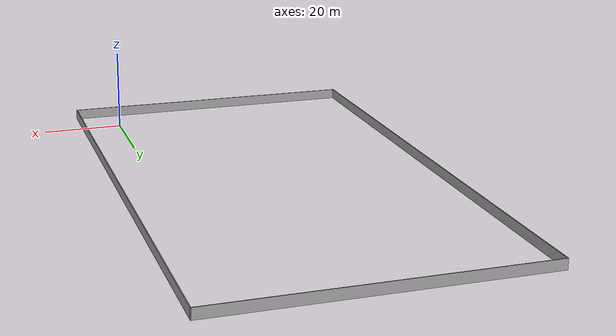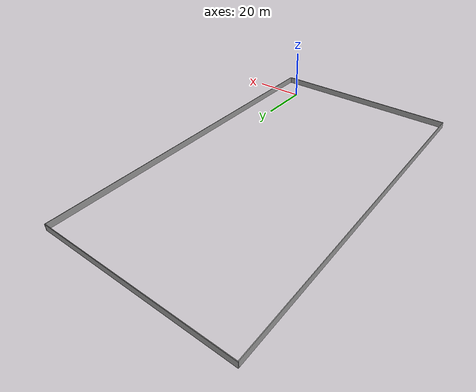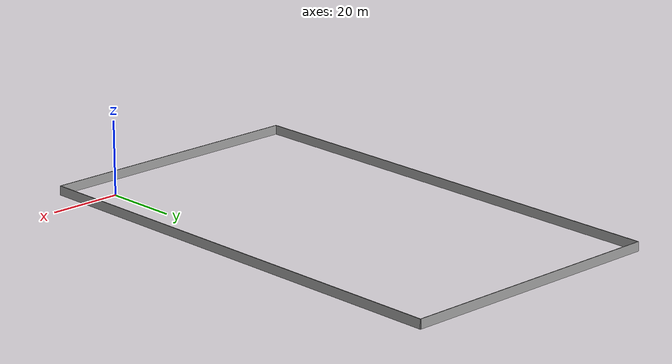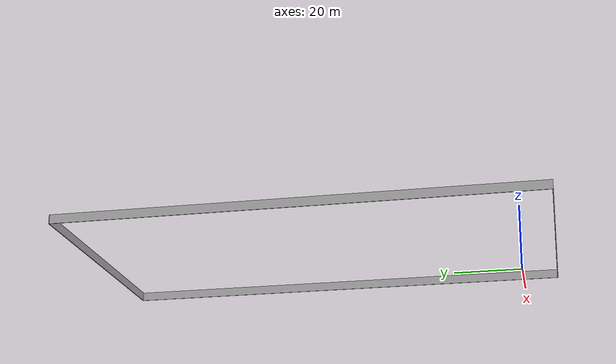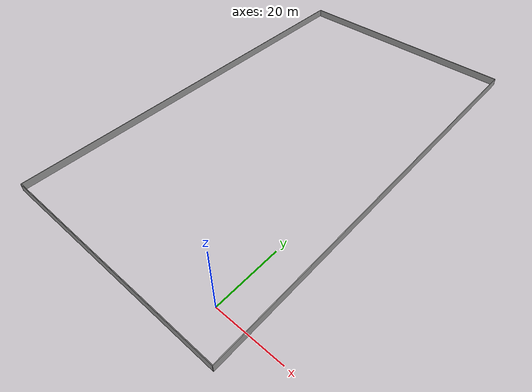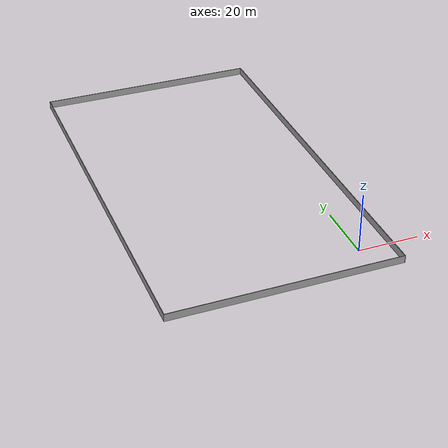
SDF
<?xml version='1.0'?>
<sdf version='1.4'>
  <model name='saint_cyr'>
    <link name='Wall_27'>
      <collision name='Wall_27_Collision'>
        <geometry>
          <box>
            <size>75.2 0.2 2.5</size>
          </box>
        </geometry>
        <pose>0 0 1.25 0 -0 0</pose>
      </collision>
      <visual name='Wall_27_Visual'>
        <pose>0 0 1.25 0 -0 0</pose>
        <geometry>
          <box>
            <size>75.2 0.2 2.5</size>
          </box>
        </geometry>
        <material>
          <script>
            <uri>file://media/materials/scripts/gazebo.material</uri>
            <name>Gazebo/Grey</name>
          </script>
        </material>
      </visual>
      <velocity_decay>
        <linear>0</linear>
        <angular>0</angular>
      </velocity_decay>
      <pose>-27.5 -10 0 0 -0 0</pose>
    </link>
    <link name='Wall_29'>
      <collision name='Wall_29_Collision'>
        <geometry>
          <box>
            <size>130.2 0.2 2.5</size>
          </box>
        </geometry>
        <pose>0 0 1.25 0 -0 0</pose>
      </collision>
      <visual name='Wall_29_Visual'>
        <pose>0 0 1.25 0 -0 0</pose>
        <geometry>
          <box>
            <size>130.2 0.2 2.5</size>
          </box>
        </geometry>
        <material>
          <script>
            <uri>file://media/materials/scripts/gazebo.material</uri>
            <name>Gazebo/Grey</name>
          </script>
        </material>
      </visual>
      <velocity_decay>
        <linear>0</linear>
        <angular>0</angular>
      </velocity_decay>
      <pose>10 55 0 0 -0 1.5708</pose>
    </link>
    <link name='Wall_31'>
      <collision name='Wall_31_Collision'>
        <geometry>
          <box>
            <size>75.2 0.2 2.5</size>
          </box>
        </geometry>
        <pose>0 0 1.25 0 -0 0</pose>
      </collision>
      <visual name='Wall_31_Visual'>
        <pose>0 0 1.25 0 -0 0</pose>
        <geometry>
          <box>
            <size>75.2 0.2 2.5</size>
          </box>
        </geometry>
        <material>
          <script>
            <uri>file://media/materials/scripts/gazebo.material</uri>
            <name>Gazebo/Grey</name>
          </script>
        </material>
      </visual>
      <velocity_decay>
        <linear>0</linear>
        <angular>0</angular>
      </velocity_decay>
      <pose>-27.5 120 0 0 -0 3.14159</pose>
    </link>
    <link name='Wall_33'>
      <collision name='Wall_33_Collision'>
        <geometry>
          <box>
            <size>130.2 0.2 2.5</size>
          </box>
        </geometry>
        <pose>0 0 1.25 0 -0 0</pose>
      </collision>
      <visual name='Wall_33_Visual'>
        <pose>0 0 1.25 0 -0 0</pose>
        <geometry>
          <box>
            <size>130.2 0.2 2.5</size>
          </box>
        </geometry>
        <material>
          <script>
            <uri>file://media/materials/scripts/gazebo.material</uri>
            <name>Gazebo/Grey</name>
          </script>
        </material>
      </visual>
      <velocity_decay>
        <linear>0</linear>
        <angular>0</angular>
      </velocity_decay>
      <pose>-65 55 0 0 0 -1.5708</pose>
    </link>
    <static>1</static>
  </model>
</sdf>
